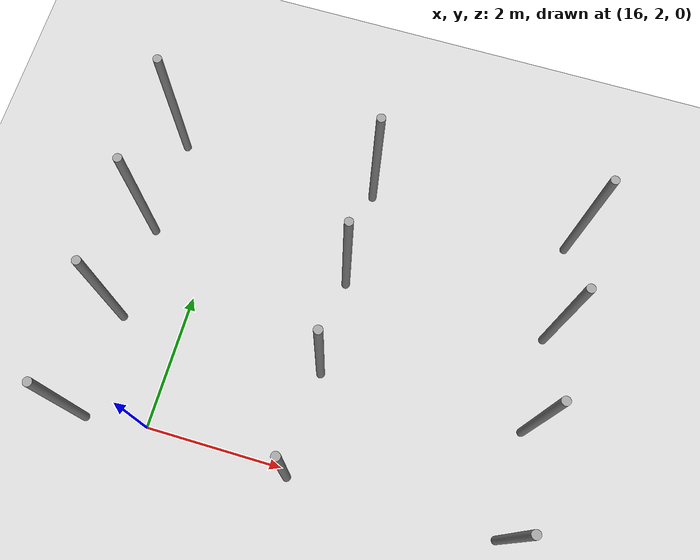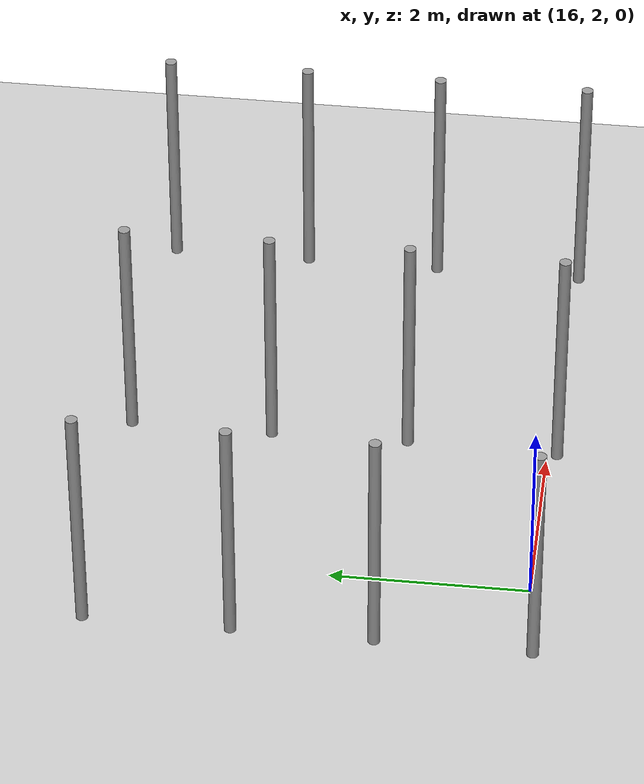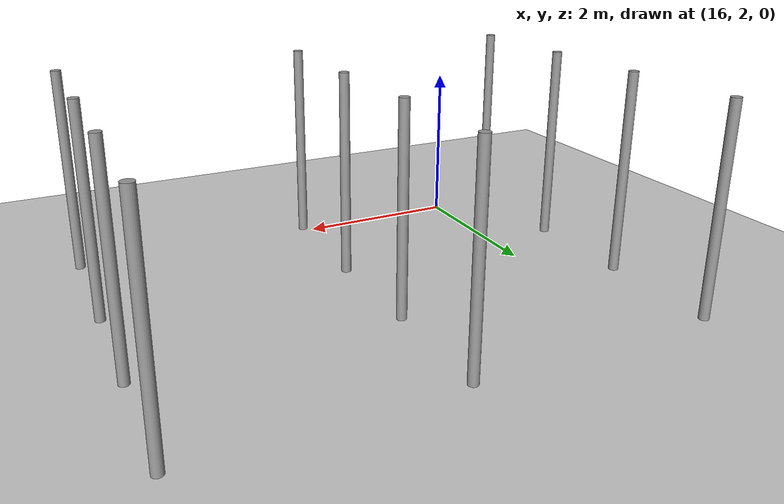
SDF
<sdf version="1.6">
 <world name="default">
  <model name="ground_plane">
   <static>1</static>
   <link name="link">
    <collision name="collision">
     <geometry><plane><normal>0 0 1</normal><size>100 100</size></plane></geometry>
     <surface><friction><ode><mu>100</mu><mu2>50</mu2></ode></friction></surface>
    </collision>
    <visual name="visual">
     <cast_shadows>0</cast_shadows>
     <geometry><plane><normal>0 0 1</normal><size>100 100</size></plane></geometry>
     <material>
      <script><uri>file://media/materials/scripts/gazebo.material</uri><name>Gazebo/Grey</name></script>
     </material>
    </visual>
   </link>
  </model>
  <model name="pole_11">
   <link name="link_0">
    <inertial>
     <mass>0.0364582</mass>
     <inertia>
      <ixx>0.00312124</ixx>
      <ixy>0</ixy>
      <ixz>0</ixz>
      <iyy>0.00312124</iyy>
      <iyz>0</iyz>
      <izz>0.00016615</izz>
     </inertia>
    </inertial>
    <visual name="visual">
     <geometry><cylinder><radius>0.06</radius><length>2.5</length></cylinder></geometry>
     <material>
      <lighting>1</lighting>
      <script><uri>file://media/materials/scripts/gazebo.material</uri><name>Gazebo/Grey</name></script>
      <ambient>0.3 0.3 0.3 1</ambient>
      <diffuse>0.7 0.7 0.7 1</diffuse>
      <specular>0.01 0.01 0.01 1</specular>
      <emissive>0 0 0 1</emissive>
      <shader type="vertex"><normal_map>__default__</normal_map></shader>
     </material>
    </visual>
    <collision name="collision">
     <geometry><cylinder><radius>0.06</radius><length>2.5</length></cylinder></geometry>
     <surface>
      <friction>
       <ode><mu>1</mu><mu2>1</mu2><fdir1>0 0 0</fdir1><slip1>0</slip1><slip2>0</slip2></ode>
       <torsional>
        <coefficient>1</coefficient>
        <patch_radius>0</patch_radius>
        <surface_radius>0</surface_radius>
        <use_patch_radius>1</use_patch_radius>
        <ode><slip>0</slip></ode>
       </torsional>
      </friction>
      <bounce><restitution_coefficient>0</restitution_coefficient><threshold>1e+06</threshold></bounce>
      <contact>
       <collide_without_contact>0</collide_without_contact>
       <collide_without_contact_bitmask>1</collide_without_contact_bitmask>
       <collide_bitmask>1</collide_bitmask>
       <ode>
        <soft_cfm>0</soft_cfm>
        <soft_erp>0.2</soft_erp>
        <kp>1e+13</kp>
        <kd>1</kd>
        <max_vel>0.01</max_vel>
        <min_depth>0</min_depth>
       </ode>
       <bullet>
        <split_impulse>1</split_impulse>
        <split_impulse_penetration_threshold>-0.01</split_impulse_penetration_threshold>
        <soft_cfm>0</soft_cfm>
        <soft_erp>0.2</soft_erp>
        <kp>1e+13</kp>
        <kd>1</kd>
       </bullet>
      </contact>
     </surface>
    </collision>
   </link>
   <static>0</static>
   <pose>15.1065 1.89866 1.24999 0 2e-06 -0.015975</pose>
  </model>
  <model name="pole_12">
   <link name="link_0">
    <inertial>
     <mass>0.0364582</mass>
     <inertia>
      <ixx>0.00312124</ixx>
      <ixy>0</ixy>
      <ixz>0</ixz>
      <iyy>0.00312124</iyy>
      <iyz>0</iyz>
      <izz>0.00016615</izz>
     </inertia>
    </inertial>
    <visual name="visual">
     <geometry><cylinder><radius>0.06</radius><length>2.5</length></cylinder></geometry>
     <material>
      <lighting>1</lighting>
      <script><uri>file://media/materials/scripts/gazebo.material</uri><name>Gazebo/Grey</name></script>
      <ambient>0.3 0.3 0.3 1</ambient>
      <diffuse>0.7 0.7 0.7 1</diffuse>
      <specular>0.01 0.01 0.01 1</specular>
      <emissive>0 0 0 1</emissive>
      <shader type="vertex"><normal_map>__default__</normal_map></shader>
     </material>
    </visual>
    <collision name="collision">
     <geometry><cylinder><radius>0.06</radius><length>2.5</length></cylinder></geometry>
     <surface>
      <friction>
       <ode><mu>1</mu><mu2>1</mu2><fdir1>0 0 0</fdir1><slip1>0</slip1><slip2>0</slip2></ode>
       <torsional>
        <coefficient>1</coefficient>
        <patch_radius>0</patch_radius>
        <surface_radius>0</surface_radius>
        <use_patch_radius>1</use_patch_radius>
        <ode><slip>0</slip></ode>
       </torsional>
      </friction>
      <bounce><restitution_coefficient>0</restitution_coefficient><threshold>1e+06</threshold></bounce>
      <contact>
       <collide_without_contact>0</collide_without_contact>
       <collide_without_contact_bitmask>1</collide_without_contact_bitmask>
       <collide_bitmask>1</collide_bitmask>
       <ode>
        <soft_cfm>0</soft_cfm>
        <soft_erp>0.2</soft_erp>
        <kp>1e+13</kp>
        <kd>1</kd>
        <max_vel>0.01</max_vel>
        <min_depth>0</min_depth>
       </ode>
       <bullet>
        <split_impulse>1</split_impulse>
        <split_impulse_penetration_threshold>-0.01</split_impulse_penetration_threshold>
        <soft_cfm>0</soft_cfm>
        <soft_erp>0.2</soft_erp>
        <kp>1e+13</kp>
        <kd>1</kd>
       </bullet>
      </contact>
     </surface>
    </collision>
   </link>
   <static>0</static>
   <pose>18.1066 1.89868 1.25 -1e-06 -1e-06 -0.020514</pose>
  </model>
  <model name="pole_13">
   <link name="link_0">
    <inertial>
     <mass>0.0364582</mass>
     <inertia>
      <ixx>0.00312124</ixx>
      <ixy>0</ixy>
      <ixz>0</ixz>
      <iyy>0.00312124</iyy>
      <iyz>0</iyz>
      <izz>0.00016615</izz>
     </inertia>
    </inertial>
    <visual name="visual">
     <geometry><cylinder><radius>0.06</radius><length>2.5</length></cylinder></geometry>
     <material>
      <lighting>1</lighting>
      <script><uri>file://media/materials/scripts/gazebo.material</uri><name>Gazebo/Grey</name></script>
      <ambient>0.3 0.3 0.3 1</ambient>
      <diffuse>0.7 0.7 0.7 1</diffuse>
      <specular>0.01 0.01 0.01 1</specular>
      <emissive>0 0 0 1</emissive>
      <shader type="vertex"><normal_map>__default__</normal_map></shader>
     </material>
    </visual>
    <collision name="collision">
     <geometry><cylinder><radius>0.06</radius><length>2.5</length></cylinder></geometry>
     <surface>
      <friction>
       <ode><mu>1</mu><mu2>1</mu2><fdir1>0 0 0</fdir1><slip1>0</slip1><slip2>0</slip2></ode>
       <torsional>
        <coefficient>1</coefficient>
        <patch_radius>0</patch_radius>
        <surface_radius>0</surface_radius>
        <use_patch_radius>1</use_patch_radius>
        <ode><slip>0</slip></ode>
       </torsional>
      </friction>
      <bounce><restitution_coefficient>0</restitution_coefficient><threshold>1e+06</threshold></bounce>
      <contact>
       <collide_without_contact>0</collide_without_contact>
       <collide_without_contact_bitmask>1</collide_without_contact_bitmask>
       <collide_bitmask>1</collide_bitmask>
       <ode>
        <soft_cfm>0</soft_cfm>
        <soft_erp>0.2</soft_erp>
        <kp>1e+13</kp>
        <kd>1</kd>
        <max_vel>0.01</max_vel>
        <min_depth>0</min_depth>
       </ode>
       <bullet>
        <split_impulse>1</split_impulse>
        <split_impulse_penetration_threshold>-0.01</split_impulse_penetration_threshold>
        <soft_cfm>0</soft_cfm>
        <soft_erp>0.2</soft_erp>
        <kp>1e+13</kp>
        <kd>1</kd>
       </bullet>
      </contact>
     </surface>
    </collision>
   </link>
   <static>0</static>
   <pose>21.1066 1.89882 1.25 -1e-06 1e-06 -0.019634</pose>
  </model>
  <model name="pole_14">
   <link name="link_0">
    <inertial>
     <mass>0.0364582</mass>
     <inertia>
      <ixx>0.00312124</ixx>
      <ixy>0</ixy>
      <ixz>0</ixz>
      <iyy>0.00312124</iyy>
      <iyz>0</iyz>
      <izz>0.00016615</izz>
     </inertia>
    </inertial>
    <visual name="visual">
     <geometry><cylinder><radius>0.06</radius><length>2.5</length></cylinder></geometry>
     <material>
      <lighting>1</lighting>
      <script><uri>file://media/materials/scripts/gazebo.material</uri><name>Gazebo/Grey</name></script>
      <ambient>0.3 0.3 0.3 1</ambient>
      <diffuse>0.7 0.7 0.7 1</diffuse>
      <specular>0.01 0.01 0.01 1</specular>
      <emissive>0 0 0 1</emissive>
      <shader type="vertex"><normal_map>__default__</normal_map></shader>
     </material>
    </visual>
    <collision name="collision">
     <geometry><cylinder><radius>0.06</radius><length>2.5</length></cylinder></geometry>
     <surface>
      <friction>
       <ode><mu>1</mu><mu2>1</mu2><fdir1>0 0 0</fdir1><slip1>0</slip1><slip2>0</slip2></ode>
       <torsional>
        <coefficient>1</coefficient>
        <patch_radius>0</patch_radius>
        <surface_radius>0</surface_radius>
        <use_patch_radius>1</use_patch_radius>
        <ode><slip>0</slip></ode>
       </torsional>
      </friction>
      <bounce><restitution_coefficient>0</restitution_coefficient><threshold>1e+06</threshold></bounce>
      <contact>
       <collide_without_contact>0</collide_without_contact>
       <collide_without_contact_bitmask>1</collide_without_contact_bitmask>
       <collide_bitmask>1</collide_bitmask>
       <ode>
        <soft_cfm>0</soft_cfm>
        <soft_erp>0.2</soft_erp>
        <kp>1e+13</kp>
        <kd>1</kd>
        <max_vel>0.01</max_vel>
        <min_depth>0</min_depth>
       </ode>
       <bullet>
        <split_impulse>1</split_impulse>
        <split_impulse_penetration_threshold>-0.01</split_impulse_penetration_threshold>
        <soft_cfm>0</soft_cfm>
        <soft_erp>0.2</soft_erp>
        <kp>1e+13</kp>
        <kd>1</kd>
       </bullet>
      </contact>
     </surface>
    </collision>
   </link>
   <static>0</static>
   <pose>15.1066 3.44485 1.25 -1e-06 0 0.006475</pose>
  </model>
  <model name="pole_15">
   <link name="link_0">
    <inertial>
     <mass>0.0364582</mass>
     <inertia>
      <ixx>0.00312124</ixx>
      <ixy>0</ixy>
      <ixz>0</ixz>
      <iyy>0.00312124</iyy>
      <iyz>0</iyz>
      <izz>0.00016615</izz>
     </inertia>
    </inertial>
    <visual name="visual">
     <geometry><cylinder><radius>0.06</radius><length>2.5</length></cylinder></geometry>
     <material>
      <lighting>1</lighting>
      <script><uri>file://media/materials/scripts/gazebo.material</uri><name>Gazebo/Grey</name></script>
      <ambient>0.3 0.3 0.3 1</ambient>
      <diffuse>0.7 0.7 0.7 1</diffuse>
      <specular>0.01 0.01 0.01 1</specular>
      <emissive>0 0 0 1</emissive>
      <shader type="vertex"><normal_map>__default__</normal_map></shader>
     </material>
    </visual>
    <collision name="collision">
     <geometry><cylinder><radius>0.06</radius><length>2.5</length></cylinder></geometry>
     <surface>
      <friction>
       <ode><mu>1</mu><mu2>1</mu2><fdir1>0 0 0</fdir1><slip1>0</slip1><slip2>0</slip2></ode>
       <torsional>
        <coefficient>1</coefficient>
        <patch_radius>0</patch_radius>
        <surface_radius>0</surface_radius>
        <use_patch_radius>1</use_patch_radius>
        <ode><slip>0</slip></ode>
       </torsional>
      </friction>
      <bounce><restitution_coefficient>0</restitution_coefficient><threshold>1e+06</threshold></bounce>
      <contact>
       <collide_without_contact>0</collide_without_contact>
       <collide_without_contact_bitmask>1</collide_without_contact_bitmask>
       <collide_bitmask>1</collide_bitmask>
       <ode>
        <soft_cfm>0</soft_cfm>
        <soft_erp>0.2</soft_erp>
        <kp>1e+13</kp>
        <kd>1</kd>
        <max_vel>0.01</max_vel>
        <min_depth>0</min_depth>
       </ode>
       <bullet>
        <split_impulse>1</split_impulse>
        <split_impulse_penetration_threshold>-0.01</split_impulse_penetration_threshold>
        <soft_cfm>0</soft_cfm>
        <soft_erp>0.2</soft_erp>
        <kp>1e+13</kp>
        <kd>1</kd>
       </bullet>
      </contact>
     </surface>
    </collision>
   </link>
   <static>0</static>
   <pose>18.1394 3.44485 1.24999 -1e-06 0 0.069997</pose>
  </model>
  <model name="pole_16">
   <link name="link_0">
    <inertial>
     <mass>0.0364582</mass>
     <inertia>
      <ixx>0.00312124</ixx>
      <ixy>0</ixy>
      <ixz>0</ixz>
      <iyy>0.00312124</iyy>
      <iyz>0</iyz>
      <izz>0.00016615</izz>
     </inertia>
    </inertial>
    <visual name="visual">
     <geometry><cylinder><radius>0.06</radius><length>2.5</length></cylinder></geometry>
     <material>
      <lighting>1</lighting>
      <script><uri>file://media/materials/scripts/gazebo.material</uri><name>Gazebo/Grey</name></script>
      <ambient>0.3 0.3 0.3 1</ambient>
      <diffuse>0.7 0.7 0.7 1</diffuse>
      <specular>0.01 0.01 0.01 1</specular>
      <emissive>0 0 0 1</emissive>
      <shader type="vertex"><normal_map>__default__</normal_map></shader>
     </material>
    </visual>
    <collision name="collision">
     <geometry><cylinder><radius>0.06</radius><length>2.5</length></cylinder></geometry>
     <surface>
      <friction>
       <ode><mu>1</mu><mu2>1</mu2><fdir1>0 0 0</fdir1><slip1>0</slip1><slip2>0</slip2></ode>
       <torsional>
        <coefficient>1</coefficient>
        <patch_radius>0</patch_radius>
        <surface_radius>0</surface_radius>
        <use_patch_radius>1</use_patch_radius>
        <ode><slip>0</slip></ode>
       </torsional>
      </friction>
      <bounce><restitution_coefficient>0</restitution_coefficient><threshold>1e+06</threshold></bounce>
      <contact>
       <collide_without_contact>0</collide_without_contact>
       <collide_without_contact_bitmask>1</collide_without_contact_bitmask>
       <collide_bitmask>1</collide_bitmask>
       <ode>
        <soft_cfm>0</soft_cfm>
        <soft_erp>0.2</soft_erp>
        <kp>1e+13</kp>
        <kd>1</kd>
        <max_vel>0.01</max_vel>
        <min_depth>0</min_depth>
       </ode>
       <bullet>
        <split_impulse>1</split_impulse>
        <split_impulse_penetration_threshold>-0.01</split_impulse_penetration_threshold>
        <soft_cfm>0</soft_cfm>
        <soft_erp>0.2</soft_erp>
        <kp>1e+13</kp>
        <kd>1</kd>
       </bullet>
      </contact>
     </surface>
    </collision>
   </link>
   <static>0</static>
   <pose>21.1076 3.44482 1.25 0 1e-06 0.052178</pose>
  </model>
  <model name="pole_17">
   <link name="link_0">
    <inertial>
     <mass>0.0364582</mass>
     <inertia>
      <ixx>0.00312124</ixx>
      <ixy>0</ixy>
      <ixz>0</ixz>
      <iyy>0.00312124</iyy>
      <iyz>0</iyz>
      <izz>0.00016615</izz>
     </inertia>
    </inertial>
    <visual name="visual">
     <geometry><cylinder><radius>0.06</radius><length>2.5</length></cylinder></geometry>
     <material>
      <lighting>1</lighting>
      <script><uri>file://media/materials/scripts/gazebo.material</uri><name>Gazebo/Grey</name></script>
      <ambient>0.3 0.3 0.3 1</ambient>
      <diffuse>0.7 0.7 0.7 1</diffuse>
      <specular>0.01 0.01 0.01 1</specular>
      <emissive>0 0 0 1</emissive>
      <shader type="vertex"><normal_map>__default__</normal_map></shader>
     </material>
    </visual>
    <collision name="collision">
     <geometry><cylinder><radius>0.06</radius><length>2.5</length></cylinder></geometry>
     <surface>
      <friction>
       <ode><mu>1</mu><mu2>1</mu2><fdir1>0 0 0</fdir1><slip1>0</slip1><slip2>0</slip2></ode>
       <torsional>
        <coefficient>1</coefficient>
        <patch_radius>0</patch_radius>
        <surface_radius>0</surface_radius>
        <use_patch_radius>1</use_patch_radius>
        <ode><slip>0</slip></ode>
       </torsional>
      </friction>
      <bounce><restitution_coefficient>0</restitution_coefficient><threshold>1e+06</threshold></bounce>
      <contact>
       <collide_without_contact>0</collide_without_contact>
       <collide_without_contact_bitmask>1</collide_without_contact_bitmask>
       <collide_bitmask>1</collide_bitmask>
       <ode>
        <soft_cfm>0</soft_cfm>
        <soft_erp>0.2</soft_erp>
        <kp>1e+13</kp>
        <kd>1</kd>
        <max_vel>0.01</max_vel>
        <min_depth>0</min_depth>
       </ode>
       <bullet>
        <split_impulse>1</split_impulse>
        <split_impulse_penetration_threshold>-0.01</split_impulse_penetration_threshold>
        <soft_cfm>0</soft_cfm>
        <soft_erp>0.2</soft_erp>
        <kp>1e+13</kp>
        <kd>1</kd>
       </bullet>
      </contact>
     </surface>
    </collision>
   </link>
   <static>0</static>
   <pose>15.1065 4.85397 1.25 -1e-06 -1e-06 -0.01921</pose>
  </model>
  <model name="pole_18">
   <link name="link_0">
    <inertial>
     <mass>0.0364582</mass>
     <inertia>
      <ixx>0.00312124</ixx>
      <ixy>0</ixy>
      <ixz>0</ixz>
      <iyy>0.00312124</iyy>
      <iyz>0</iyz>
      <izz>0.00016615</izz>
     </inertia>
    </inertial>
    <visual name="visual">
     <geometry><cylinder><radius>0.06</radius><length>2.5</length></cylinder></geometry>
     <material>
      <lighting>1</lighting>
      <script><uri>file://media/materials/scripts/gazebo.material</uri><name>Gazebo/Grey</name></script>
      <ambient>0.3 0.3 0.3 1</ambient>
      <diffuse>0.7 0.7 0.7 1</diffuse>
      <specular>0.01 0.01 0.01 1</specular>
      <emissive>0 0 0 1</emissive>
      <shader type="vertex"><normal_map>__default__</normal_map></shader>
     </material>
    </visual>
    <collision name="collision">
     <geometry><cylinder><radius>0.06</radius><length>2.5</length></cylinder></geometry>
     <surface>
      <friction>
       <ode><mu>1</mu><mu2>1</mu2><fdir1>0 0 0</fdir1><slip1>0</slip1><slip2>0</slip2></ode>
       <torsional>
        <coefficient>1</coefficient>
        <patch_radius>0</patch_radius>
        <surface_radius>0</surface_radius>
        <use_patch_radius>1</use_patch_radius>
        <ode><slip>0</slip></ode>
       </torsional>
      </friction>
      <bounce><restitution_coefficient>0</restitution_coefficient><threshold>1e+06</threshold></bounce>
      <contact>
       <collide_without_contact>0</collide_without_contact>
       <collide_without_contact_bitmask>1</collide_without_contact_bitmask>
       <collide_bitmask>1</collide_bitmask>
       <ode>
        <soft_cfm>0</soft_cfm>
        <soft_erp>0.2</soft_erp>
        <kp>1e+13</kp>
        <kd>1</kd>
        <max_vel>0.01</max_vel>
        <min_depth>0</min_depth>
       </ode>
       <bullet>
        <split_impulse>1</split_impulse>
        <split_impulse_penetration_threshold>-0.01</split_impulse_penetration_threshold>
        <soft_cfm>0</soft_cfm>
        <soft_erp>0.2</soft_erp>
        <kp>1e+13</kp>
        <kd>1</kd>
       </bullet>
      </contact>
     </surface>
    </collision>
   </link>
   <static>0</static>
   <pose>18.1065 4.85388 1.24999 -1e-06 1e-06 -0.023294</pose>
  </model>
  <model name="pole_19">
   <link name="link_0">
    <inertial>
     <mass>0.0364582</mass>
     <inertia>
      <ixx>0.00312124</ixx>
      <ixy>0</ixy>
      <ixz>0</ixz>
      <iyy>0.00312124</iyy>
      <iyz>0</iyz>
      <izz>0.00016615</izz>
     </inertia>
    </inertial>
    <visual name="visual">
     <geometry><cylinder><radius>0.06</radius><length>2.5</length></cylinder></geometry>
     <material>
      <lighting>1</lighting>
      <script><uri>file://media/materials/scripts/gazebo.material</uri><name>Gazebo/Grey</name></script>
      <ambient>0.3 0.3 0.3 1</ambient>
      <diffuse>0.7 0.7 0.7 1</diffuse>
      <specular>0.01 0.01 0.01 1</specular>
      <emissive>0 0 0 1</emissive>
      <shader type="vertex"><normal_map>__default__</normal_map></shader>
     </material>
    </visual>
    <collision name="collision">
     <geometry><cylinder><radius>0.06</radius><length>2.5</length></cylinder></geometry>
     <surface>
      <friction>
       <ode><mu>1</mu><mu2>1</mu2><fdir1>0 0 0</fdir1><slip1>0</slip1><slip2>0</slip2></ode>
       <torsional>
        <coefficient>1</coefficient>
        <patch_radius>0</patch_radius>
        <surface_radius>0</surface_radius>
        <use_patch_radius>1</use_patch_radius>
        <ode><slip>0</slip></ode>
       </torsional>
      </friction>
      <bounce><restitution_coefficient>0</restitution_coefficient><threshold>1e+06</threshold></bounce>
      <contact>
       <collide_without_contact>0</collide_without_contact>
       <collide_without_contact_bitmask>1</collide_without_contact_bitmask>
       <collide_bitmask>1</collide_bitmask>
       <ode>
        <soft_cfm>0</soft_cfm>
        <soft_erp>0.2</soft_erp>
        <kp>1e+13</kp>
        <kd>1</kd>
        <max_vel>0.01</max_vel>
        <min_depth>0</min_depth>
       </ode>
       <bullet>
        <split_impulse>1</split_impulse>
        <split_impulse_penetration_threshold>-0.01</split_impulse_penetration_threshold>
        <soft_cfm>0</soft_cfm>
        <soft_erp>0.2</soft_erp>
        <kp>1e+13</kp>
        <kd>1</kd>
       </bullet>
      </contact>
     </surface>
    </collision>
   </link>
   <static>0</static>
   <pose>21.1066 4.85385 1.25 -2e-06 2e-06 -0.286019</pose>
  </model>
  <model name="pole_20">
   <link name="link_0">
    <inertial>
     <mass>0.0364582</mass>
     <inertia>
      <ixx>0.00312124</ixx>
      <ixy>0</ixy>
      <ixz>0</ixz>
      <iyy>0.00312124</iyy>
      <iyz>0</iyz>
      <izz>0.00016615</izz>
     </inertia>
    </inertial>
    <visual name="visual">
     <geometry><cylinder><radius>0.06</radius><length>2.5</length></cylinder></geometry>
     <material>
      <lighting>1</lighting>
      <script><uri>file://media/materials/scripts/gazebo.material</uri><name>Gazebo/Grey</name></script>
      <ambient>0.3 0.3 0.3 1</ambient>
      <diffuse>0.7 0.7 0.7 1</diffuse>
      <specular>0.01 0.01 0.01 1</specular>
      <emissive>0 0 0 1</emissive>
      <shader type="vertex"><normal_map>__default__</normal_map></shader>
     </material>
    </visual>
    <collision name="collision">
     <geometry><cylinder><radius>0.06</radius><length>2.5</length></cylinder></geometry>
     <surface>
      <friction>
       <ode><mu>1</mu><mu2>1</mu2><fdir1>0 0 0</fdir1><slip1>0</slip1><slip2>0</slip2></ode>
       <torsional>
        <coefficient>1</coefficient>
        <patch_radius>0</patch_radius>
        <surface_radius>0</surface_radius>
        <use_patch_radius>1</use_patch_radius>
        <ode><slip>0</slip></ode>
       </torsional>
      </friction>
      <bounce><restitution_coefficient>0</restitution_coefficient><threshold>1e+06</threshold></bounce>
      <contact>
       <collide_without_contact>0</collide_without_contact>
       <collide_without_contact_bitmask>1</collide_without_contact_bitmask>
       <collide_bitmask>1</collide_bitmask>
       <ode>
        <soft_cfm>0</soft_cfm>
        <soft_erp>0.2</soft_erp>
        <kp>1e+13</kp>
        <kd>1</kd>
        <max_vel>0.01</max_vel>
        <min_depth>0</min_depth>
       </ode>
       <bullet>
        <split_impulse>1</split_impulse>
        <split_impulse_penetration_threshold>-0.01</split_impulse_penetration_threshold>
        <soft_cfm>0</soft_cfm>
        <soft_erp>0.2</soft_erp>
        <kp>1e+13</kp>
        <kd>1</kd>
       </bullet>
      </contact>
     </surface>
    </collision>
   </link>
   <static>0</static>
   <pose>15.1066 6.31679 1.24999 -0 1e-06 -0.02038</pose>
  </model>
  <model name="pole_21">
   <link name="link_0">
    <inertial>
     <mass>0.0364582</mass>
     <inertia>
      <ixx>0.00312124</ixx>
      <ixy>0</ixy>
      <ixz>0</ixz>
      <iyy>0.00312124</iyy>
      <iyz>0</iyz>
      <izz>0.00016615</izz>
     </inertia>
    </inertial>
    <visual name="visual">
     <geometry><cylinder><radius>0.06</radius><length>2.5</length></cylinder></geometry>
     <material>
      <lighting>1</lighting>
      <script><uri>file://media/materials/scripts/gazebo.material</uri><name>Gazebo/Grey</name></script>
      <ambient>0.3 0.3 0.3 1</ambient>
      <diffuse>0.7 0.7 0.7 1</diffuse>
      <specular>0.01 0.01 0.01 1</specular>
      <emissive>0 0 0 1</emissive>
      <shader type="vertex"><normal_map>__default__</normal_map></shader>
     </material>
    </visual>
    <collision name="collision">
     <geometry><cylinder><radius>0.06</radius><length>2.5</length></cylinder></geometry>
     <surface>
      <friction>
       <ode><mu>1</mu><mu2>1</mu2><fdir1>0 0 0</fdir1><slip1>0</slip1><slip2>0</slip2></ode>
       <torsional>
        <coefficient>1</coefficient>
        <patch_radius>0</patch_radius>
        <surface_radius>0</surface_radius>
        <use_patch_radius>1</use_patch_radius>
        <ode><slip>0</slip></ode>
       </torsional>
      </friction>
      <bounce><restitution_coefficient>0</restitution_coefficient><threshold>1e+06</threshold></bounce>
      <contact>
       <collide_without_contact>0</collide_without_contact>
       <collide_without_contact_bitmask>1</collide_without_contact_bitmask>
       <collide_bitmask>1</collide_bitmask>
       <ode>
        <soft_cfm>0</soft_cfm>
        <soft_erp>0.2</soft_erp>
        <kp>1e+13</kp>
        <kd>1</kd>
        <max_vel>0.01</max_vel>
        <min_depth>0</min_depth>
       </ode>
       <bullet>
        <split_impulse>1</split_impulse>
        <split_impulse_penetration_threshold>-0.01</split_impulse_penetration_threshold>
        <soft_cfm>0</soft_cfm>
        <soft_erp>0.2</soft_erp>
        <kp>1e+13</kp>
        <kd>1</kd>
       </bullet>
      </contact>
     </surface>
    </collision>
   </link>
   <static>0</static>
   <pose>18.1066 6.31673 1.25 -1e-06 -5e-06 -0.020553</pose>
  </model>
  <model name="pole_22">
   <link name="link_0">
    <inertial>
     <mass>0.0364582</mass>
     <inertia>
      <ixx>0.00312124</ixx>
      <ixy>0</ixy>
      <ixz>0</ixz>
      <iyy>0.00312124</iyy>
      <iyz>0</iyz>
      <izz>0.00016615</izz>
     </inertia>
    </inertial>
    <visual name="visual">
     <geometry><cylinder><radius>0.06</radius><length>2.5</length></cylinder></geometry>
     <material>
      <lighting>1</lighting>
      <script><uri>file://media/materials/scripts/gazebo.material</uri><name>Gazebo/Grey</name></script>
      <ambient>0.3 0.3 0.3 1</ambient>
      <diffuse>0.7 0.7 0.7 1</diffuse>
      <specular>0.01 0.01 0.01 1</specular>
      <emissive>0 0 0 1</emissive>
      <shader type="vertex"><normal_map>__default__</normal_map></shader>
     </material>
    </visual>
    <collision name="collision">
     <geometry><cylinder><radius>0.06</radius><length>2.5</length></cylinder></geometry>
     <surface>
      <friction>
       <ode><mu>1</mu><mu2>1</mu2><fdir1>0 0 0</fdir1><slip1>0</slip1><slip2>0</slip2></ode>
       <torsional>
        <coefficient>1</coefficient>
        <patch_radius>0</patch_radius>
        <surface_radius>0</surface_radius>
        <use_patch_radius>1</use_patch_radius>
        <ode><slip>0</slip></ode>
       </torsional>
      </friction>
      <bounce><restitution_coefficient>0</restitution_coefficient><threshold>1e+06</threshold></bounce>
      <contact>
       <collide_without_contact>0</collide_without_contact>
       <collide_without_contact_bitmask>1</collide_without_contact_bitmask>
       <collide_bitmask>1</collide_bitmask>
       <ode>
        <soft_cfm>0</soft_cfm>
        <soft_erp>0.2</soft_erp>
        <kp>1e+13</kp>
        <kd>1</kd>
        <max_vel>0.01</max_vel>
        <min_depth>0</min_depth>
       </ode>
       <bullet>
        <split_impulse>1</split_impulse>
        <split_impulse_penetration_threshold>-0.01</split_impulse_penetration_threshold>
        <soft_cfm>0</soft_cfm>
        <soft_erp>0.2</soft_erp>
        <kp>1e+13</kp>
        <kd>1</kd>
       </bullet>
      </contact>
     </surface>
    </collision>
   </link>
   <static>0</static>
   <pose>21.1065 6.31673 1.24999 0 -1e-06 -0.021818</pose>
  </model>
 </world>
</sdf>
